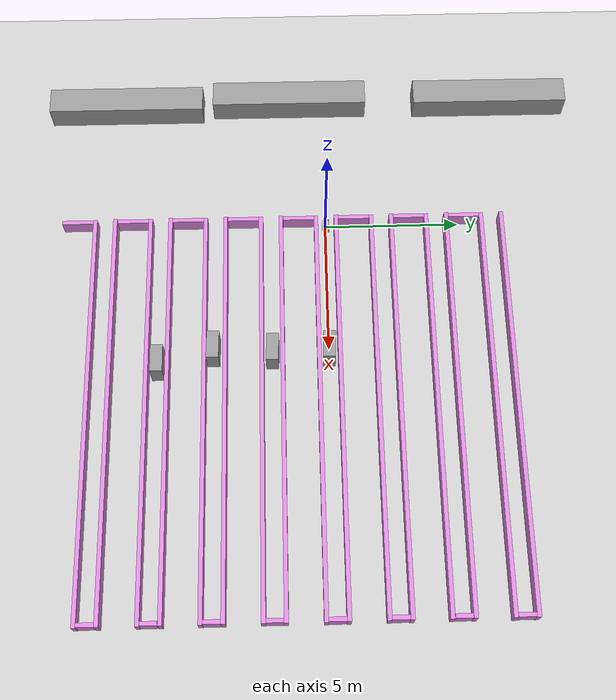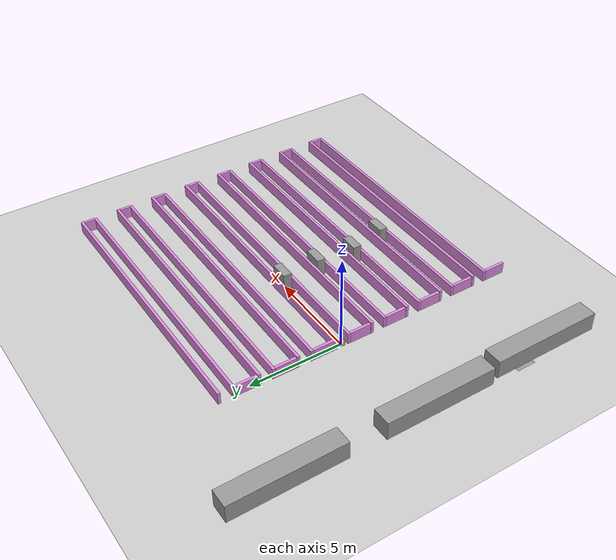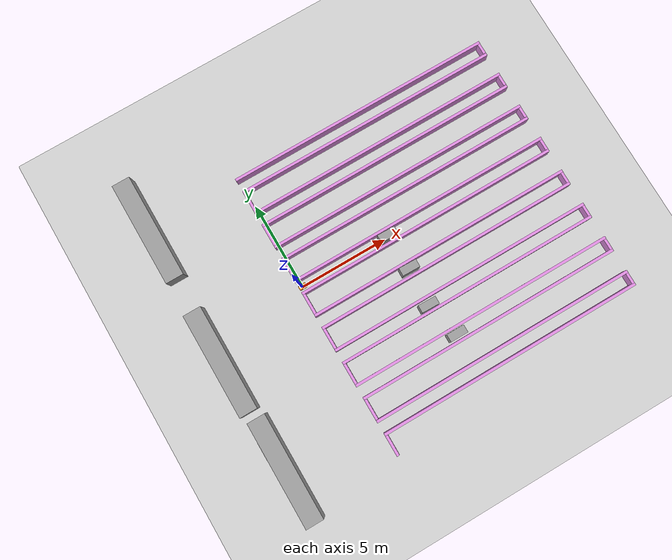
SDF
<sdf version="1.7">
 <world name="default">
  <light name="sun" type="directional">
   <pose>0 0 10 0 -0 0</pose>
   <diffuse>0.8 0.8 0.8 1</diffuse>
   <specular>0.2 0.2 0.2 1</specular>
   <attenuation>
    <range>1000</range>
    <constant>0.9</constant>
    <linear>0.01</linear>
    <quadratic>0.001</quadratic>
   </attenuation>
   <direction>-0.5 0.1 -0.9</direction>
   <spot><inner_angle>0</inner_angle><outer_angle>0</outer_angle><falloff>0</falloff></spot>
  </light>
  <model name="ground_plane">
   <static>1</static>
   <link name="link">
    <collision name="collision">
     <geometry><plane><normal>0 0 1</normal><size>100 100</size></plane></geometry>
     <surface>
      <contact><collide_bitmask>65535</collide_bitmask></contact>
      <friction><ode><mu>100</mu><mu2>50</mu2></ode></friction>
     </surface>
    </collision>
    <visual name="visual">
     <cast_shadows>0</cast_shadows>
     <geometry><plane><normal>0 0 1</normal><size>100 100</size></plane></geometry>
     <material>
      <script><uri>file://media/materials/scripts/gazebo.material</uri><name>Gazebo/Grey</name></script>
     </material>
    </visual>
   </link>
  </model>
  <gravity>0 0 -9.8</gravity>
  <magnetic_field>6e-06 2.3e-05 -4.2e-05</magnetic_field>
  <atmosphere type="adiabatic"/>
  <physics type="ode">
   <max_step_size>0.001</max_step_size>
   <real_time_factor>1</real_time_factor>
   <real_time_update_rate>1000</real_time_update_rate>
  </physics>
  <scene><ambient>0.4 0.4 0.4 1</ambient><background>0.7 0.7 0.7 1</background><shadows>1</shadows></scene>
  <audio><device>default</device></audio>
  <spherical_coordinates>
   <surface_model>EARTH_WGS84</surface_model>
   <latitude_deg>0</latitude_deg>
   <longitude_deg>0</longitude_deg>
   <elevation>0</elevation>
   <heading_deg>0</heading_deg>
  </spherical_coordinates>
  <model name="60cm_koridor">
   <pose>7.323 -0.566065 0 0 -0 0</pose>
   <link name="Wall_0">
    <collision name="Wall_0_Collision">
     <geometry><box><size>0.600141 0.15 0.65</size></box></geometry>
     <pose>0 0 0.325 0 -0 0</pose>
    </collision>
    <visual name="Wall_0_Visual">
     <pose>0 0 0.325 0 -0 0</pose>
     <geometry><box><size>0.600141 0.15 0.65</size></box></geometry>
     <material>
      <script><uri>file://media/materials/scripts/gazebo.material</uri><name>Gazebo/Grey</name></script>
      <ambient>0.862745 0.541176 0.866667 1</ambient>
     </material>
     <meta><layer>0</layer></meta>
    </visual>
    <pose>7.4125 0.576065 0 0 -0 -1.57302</pose>
   </link>
   <link name="Wall_11">
    <collision name="Wall_11_Collision">
     <geometry><box><size>1.15626 0.15 0.6</size></box></geometry>
     <pose>0 0 0.3 0 -0 0</pose>
    </collision>
    <visual name="Wall_11_Visual">
     <pose>0 0 0.3 0 -0 0</pose>
     <geometry><box><size>1.15626 0.15 0.6</size></box></geometry>
     <material>
      <script><uri>file://media/materials/scripts/gazebo.material</uri><name>Gazebo/Grey</name></script>
      <ambient>0.862745 0.541176 0.866667 1</ambient>
     </material>
     <meta><layer>0</layer></meta>
    </visual>
    <pose>-7.422 -0.450935 0 0 -0 -1.5708</pose>
   </link>
   <link name="Wall_2">
    <collision name="Wall_2_Collision">
     <geometry><box><size>15 0.15 0.65</size></box></geometry>
     <pose>0 0 0.325 0 -0 0</pose>
    </collision>
    <visual name="Wall_2_Visual">
     <pose>0 0 0.325 0 -0 0</pose>
     <geometry><box><size>15 0.15 0.65</size></box></geometry>
     <material>
      <script><uri>file://media/materials/scripts/gazebo.material</uri><name>Gazebo/Grey</name></script>
      <ambient>0.862745 0.541176 0.866667 1</ambient>
     </material>
     <meta><layer>0</layer></meta>
    </visual>
    <pose>-0.002 0.954065 0 0 -0 3.14159</pose>
   </link>
   <link name="Wall_4">
    <collision name="Wall_4_Collision">
     <geometry><box><size>15 0.15 0.6</size></box></geometry>
     <pose>0 0 0.3 0 -0 0</pose>
    </collision>
    <visual name="Wall_4_Visual">
     <pose>0 0 0.3 0 -0 0</pose>
     <geometry><box><size>15 0.15 0.6</size></box></geometry>
     <material>
      <script><uri>file://media/materials/scripts/gazebo.material</uri><name>Gazebo/Grey</name></script>
      <ambient>0.862745 0.541176 0.866667 1</ambient>
     </material>
     <meta><layer>0</layer></meta>
    </visual>
    <pose>0.002 0.203065 0 0 -0 0</pose>
   </link>
   <static>1</static>
  </model>
  <model name="60cm_koridor_clone">
   <pose>7.3235 -2.63015 0 0 -0 0</pose>
   <link name="Wall_0">
    <collision name="Wall_0_Collision">
     <geometry><box><size>0.600141 0.15 0.65</size></box></geometry>
     <pose>0 0 0.325 0 -0 0</pose>
    </collision>
    <visual name="Wall_0_Visual">
     <pose>0 0 0.325 0 -0 0</pose>
     <geometry><box><size>0.600141 0.15 0.65</size></box></geometry>
     <material>
      <script><uri>file://media/materials/scripts/gazebo.material</uri><name>Gazebo/Grey</name></script>
      <ambient>0.862745 0.541176 0.866667 1</ambient>
     </material>
     <meta><layer>0</layer></meta>
    </visual>
    <pose>7.4125 0.576065 0 0 -0 -1.57302</pose>
   </link>
   <link name="Wall_11">
    <collision name="Wall_11_Collision">
     <geometry><box><size>1.15626 0.15 0.6</size></box></geometry>
     <pose>0 0 0.3 0 -0 0</pose>
    </collision>
    <visual name="Wall_11_Visual">
     <pose>0 0 0.3 0 -0 0</pose>
     <geometry><box><size>1.15626 0.15 0.6</size></box></geometry>
     <material>
      <script><uri>file://media/materials/scripts/gazebo.material</uri><name>Gazebo/Grey</name></script>
      <ambient>0.862745 0.541176 0.866667 1</ambient>
     </material>
     <meta><layer>0</layer></meta>
    </visual>
    <pose>-7.422 -0.450935 0 0 -0 -1.5708</pose>
   </link>
   <link name="Wall_2">
    <collision name="Wall_2_Collision">
     <geometry><box><size>15 0.15 0.65</size></box></geometry>
     <pose>0 0 0.325 0 -0 0</pose>
    </collision>
    <visual name="Wall_2_Visual">
     <pose>0 0 0.325 0 -0 0</pose>
     <geometry><box><size>15 0.15 0.65</size></box></geometry>
     <material>
      <script><uri>file://media/materials/scripts/gazebo.material</uri><name>Gazebo/Grey</name></script>
      <ambient>0.862745 0.541176 0.866667 1</ambient>
     </material>
     <meta><layer>0</layer></meta>
    </visual>
    <pose>-0.002 0.954065 0 0 -0 3.14159</pose>
   </link>
   <link name="Wall_4">
    <collision name="Wall_4_Collision">
     <geometry><box><size>15 0.15 0.6</size></box></geometry>
     <pose>0 0 0.3 0 -0 0</pose>
    </collision>
    <visual name="Wall_4_Visual">
     <pose>0 0 0.3 0 -0 0</pose>
     <geometry><box><size>15 0.15 0.6</size></box></geometry>
     <material>
      <script><uri>file://media/materials/scripts/gazebo.material</uri><name>Gazebo/Grey</name></script>
      <ambient>0.862745 0.541176 0.866667 1</ambient>
     </material>
     <meta><layer>0</layer></meta>
    </visual>
    <pose>0.002 0.203065 0 0 -0 0</pose>
   </link>
   <static>1</static>
  </model>
  <model name="60cm_koridor_clone_clone">
   <pose>7.3271 -4.69709 0 0 -0 0</pose>
   <link name="Wall_0">
    <collision name="Wall_0_Collision">
     <geometry><box><size>0.600141 0.15 0.65</size></box></geometry>
     <pose>0 0 0.325 0 -0 0</pose>
    </collision>
    <visual name="Wall_0_Visual">
     <pose>0 0 0.325 0 -0 0</pose>
     <geometry><box><size>0.600141 0.15 0.65</size></box></geometry>
     <material>
      <script><uri>file://media/materials/scripts/gazebo.material</uri><name>Gazebo/Grey</name></script>
      <ambient>0.862745 0.541176 0.866667 1</ambient>
     </material>
     <meta><layer>0</layer></meta>
    </visual>
    <pose>7.4125 0.576065 0 0 -0 -1.57302</pose>
   </link>
   <link name="Wall_11">
    <collision name="Wall_11_Collision">
     <geometry><box><size>1.15626 0.15 0.6</size></box></geometry>
     <pose>0 0 0.3 0 -0 0</pose>
    </collision>
    <visual name="Wall_11_Visual">
     <pose>0 0 0.3 0 -0 0</pose>
     <geometry><box><size>1.15626 0.15 0.6</size></box></geometry>
     <material>
      <script><uri>file://media/materials/scripts/gazebo.material</uri><name>Gazebo/Grey</name></script>
      <ambient>0.862745 0.541176 0.866667 1</ambient>
     </material>
     <meta><layer>0</layer></meta>
    </visual>
    <pose>-7.422 -0.450935 0 0 -0 -1.5708</pose>
   </link>
   <link name="Wall_2">
    <collision name="Wall_2_Collision">
     <geometry><box><size>15 0.15 0.65</size></box></geometry>
     <pose>0 0 0.325 0 -0 0</pose>
    </collision>
    <visual name="Wall_2_Visual">
     <pose>0 0 0.325 0 -0 0</pose>
     <geometry><box><size>15 0.15 0.65</size></box></geometry>
     <material>
      <script><uri>file://media/materials/scripts/gazebo.material</uri><name>Gazebo/Grey</name></script>
      <ambient>0.862745 0.541176 0.866667 1</ambient>
     </material>
     <meta><layer>0</layer></meta>
    </visual>
    <pose>-0.002 0.954065 0 0 -0 3.14159</pose>
   </link>
   <link name="Wall_4">
    <collision name="Wall_4_Collision">
     <geometry><box><size>15 0.15 0.6</size></box></geometry>
     <pose>0 0 0.3 0 -0 0</pose>
    </collision>
    <visual name="Wall_4_Visual">
     <pose>0 0 0.3 0 -0 0</pose>
     <geometry><box><size>15 0.15 0.6</size></box></geometry>
     <material>
      <script><uri>file://media/materials/scripts/gazebo.material</uri><name>Gazebo/Grey</name></script>
      <ambient>0.862745 0.541176 0.866667 1</ambient>
     </material>
     <meta><layer>0</layer></meta>
    </visual>
    <pose>0.002 0.203065 0 0 -0 0</pose>
   </link>
   <static>1</static>
  </model>
  <model name="60cm_koridor_clone_clone_clone">
   <pose>7.3363 -6.75838 0 0 -0 0</pose>
   <link name="Wall_0">
    <collision name="Wall_0_Collision">
     <geometry><box><size>0.600141 0.15 0.65</size></box></geometry>
     <pose>0 0 0.325 0 -0 0</pose>
    </collision>
    <visual name="Wall_0_Visual">
     <pose>0 0 0.325 0 -0 0</pose>
     <geometry><box><size>0.600141 0.15 0.65</size></box></geometry>
     <material>
      <script><uri>file://media/materials/scripts/gazebo.material</uri><name>Gazebo/Grey</name></script>
      <ambient>0.862745 0.541176 0.866667 1</ambient>
     </material>
     <meta><layer>0</layer></meta>
    </visual>
    <pose>7.4125 0.576065 0 0 -0 -1.57302</pose>
   </link>
   <link name="Wall_11">
    <collision name="Wall_11_Collision">
     <geometry><box><size>1.15626 0.15 0.6</size></box></geometry>
     <pose>0 0 0.3 0 -0 0</pose>
    </collision>
    <visual name="Wall_11_Visual">
     <pose>0 0 0.3 0 -0 0</pose>
     <geometry><box><size>1.15626 0.15 0.6</size></box></geometry>
     <material>
      <script><uri>file://media/materials/scripts/gazebo.material</uri><name>Gazebo/Grey</name></script>
      <ambient>0.862745 0.541176 0.866667 1</ambient>
     </material>
     <meta><layer>0</layer></meta>
    </visual>
    <pose>-7.422 -0.450935 0 0 -0 -1.5708</pose>
   </link>
   <link name="Wall_2">
    <collision name="Wall_2_Collision">
     <geometry><box><size>15 0.15 0.65</size></box></geometry>
     <pose>0 0 0.325 0 -0 0</pose>
    </collision>
    <visual name="Wall_2_Visual">
     <pose>0 0 0.325 0 -0 0</pose>
     <geometry><box><size>15 0.15 0.65</size></box></geometry>
     <material>
      <script><uri>file://media/materials/scripts/gazebo.material</uri><name>Gazebo/Grey</name></script>
      <ambient>0.862745 0.541176 0.866667 1</ambient>
     </material>
     <meta><layer>0</layer></meta>
    </visual>
    <pose>-0.002 0.954065 0 0 -0 3.14159</pose>
   </link>
   <link name="Wall_4">
    <collision name="Wall_4_Collision">
     <geometry><box><size>15 0.15 0.6</size></box></geometry>
     <pose>0 0 0.3 0 -0 0</pose>
    </collision>
    <visual name="Wall_4_Visual">
     <pose>0 0 0.3 0 -0 0</pose>
     <geometry><box><size>15 0.15 0.6</size></box></geometry>
     <material>
      <script><uri>file://media/materials/scripts/gazebo.material</uri><name>Gazebo/Grey</name></script>
      <ambient>0.862745 0.541176 0.866667 1</ambient>
     </material>
     <meta><layer>0</layer></meta>
    </visual>
    <pose>0.002 0.203065 0 0 -0 0</pose>
   </link>
   <static>1</static>
  </model>
  <model name="60cm_koridor_clone_clone_clone_clone">
   <pose>7.3429 -8.82832 0 0 -0 0</pose>
   <link name="Wall_0">
    <collision name="Wall_0_Collision">
     <geometry><box><size>0.600141 0.15 0.65</size></box></geometry>
     <pose>0 0 0.325 0 -0 0</pose>
    </collision>
    <visual name="Wall_0_Visual">
     <pose>0 0 0.325 0 -0 0</pose>
     <geometry><box><size>0.600141 0.15 0.65</size></box></geometry>
     <material>
      <script><uri>file://media/materials/scripts/gazebo.material</uri><name>Gazebo/Grey</name></script>
      <ambient>0.862745 0.541176 0.866667 1</ambient>
     </material>
     <meta><layer>0</layer></meta>
    </visual>
    <pose>7.4125 0.576065 0 0 -0 -1.57302</pose>
   </link>
   <link name="Wall_11">
    <collision name="Wall_11_Collision">
     <geometry><box><size>1.15626 0.15 0.6</size></box></geometry>
     <pose>0 0 0.3 0 -0 0</pose>
    </collision>
    <visual name="Wall_11_Visual">
     <pose>0 0 0.3 0 -0 0</pose>
     <geometry><box><size>1.15626 0.15 0.6</size></box></geometry>
     <material>
      <script><uri>file://media/materials/scripts/gazebo.material</uri><name>Gazebo/Grey</name></script>
      <ambient>0.862745 0.541176 0.866667 1</ambient>
     </material>
     <meta><layer>0</layer></meta>
    </visual>
    <pose>-7.422 -0.450935 0 0 -0 -1.5708</pose>
   </link>
   <link name="Wall_2">
    <collision name="Wall_2_Collision">
     <geometry><box><size>15 0.15 0.65</size></box></geometry>
     <pose>0 0 0.325 0 -0 0</pose>
    </collision>
    <visual name="Wall_2_Visual">
     <pose>0 0 0.325 0 -0 0</pose>
     <geometry><box><size>15 0.15 0.65</size></box></geometry>
     <material>
      <script><uri>file://media/materials/scripts/gazebo.material</uri><name>Gazebo/Grey</name></script>
      <ambient>0.862745 0.541176 0.866667 1</ambient>
     </material>
     <meta><layer>0</layer></meta>
    </visual>
    <pose>-0.002 0.954065 0 0 -0 3.14159</pose>
   </link>
   <link name="Wall_4">
    <collision name="Wall_4_Collision">
     <geometry><box><size>15 0.15 0.6</size></box></geometry>
     <pose>0 0 0.3 0 -0 0</pose>
    </collision>
    <visual name="Wall_4_Visual">
     <pose>0 0 0.3 0 -0 0</pose>
     <geometry><box><size>15 0.15 0.6</size></box></geometry>
     <material>
      <script><uri>file://media/materials/scripts/gazebo.material</uri><name>Gazebo/Grey</name></script>
      <ambient>0.862745 0.541176 0.866667 1</ambient>
     </material>
     <meta><layer>0</layer></meta>
    </visual>
    <pose>0.002 0.203065 0 0 -0 0</pose>
   </link>
   <static>1</static>
  </model>
  <model name="60cm_koridor_clone_0">
   <pose>7.3114 1.50377 0 0 -0 0</pose>
   <link name="Wall_0">
    <collision name="Wall_0_Collision">
     <geometry><box><size>0.600141 0.15 0.65</size></box></geometry>
     <pose>0 0 0.325 0 -0 0</pose>
    </collision>
    <visual name="Wall_0_Visual">
     <pose>0 0 0.325 0 -0 0</pose>
     <geometry><box><size>0.600141 0.15 0.65</size></box></geometry>
     <material>
      <script><uri>file://media/materials/scripts/gazebo.material</uri><name>Gazebo/Grey</name></script>
      <ambient>0.862745 0.541176 0.866667 1</ambient>
     </material>
     <meta><layer>0</layer></meta>
    </visual>
    <pose>7.4125 0.576065 0 0 -0 -1.57302</pose>
   </link>
   <link name="Wall_11">
    <collision name="Wall_11_Collision">
     <geometry><box><size>1.15626 0.15 0.6</size></box></geometry>
     <pose>0 0 0.3 0 -0 0</pose>
    </collision>
    <visual name="Wall_11_Visual">
     <pose>0 0 0.3 0 -0 0</pose>
     <geometry><box><size>1.15626 0.15 0.6</size></box></geometry>
     <material>
      <script><uri>file://media/materials/scripts/gazebo.material</uri><name>Gazebo/Grey</name></script>
      <ambient>0.862745 0.541176 0.866667 1</ambient>
     </material>
     <meta><layer>0</layer></meta>
    </visual>
    <pose>-7.422 -0.450935 0 0 -0 -1.5708</pose>
   </link>
   <link name="Wall_2">
    <collision name="Wall_2_Collision">
     <geometry><box><size>15 0.15 0.65</size></box></geometry>
     <pose>0 0 0.325 0 -0 0</pose>
    </collision>
    <visual name="Wall_2_Visual">
     <pose>0 0 0.325 0 -0 0</pose>
     <geometry><box><size>15 0.15 0.65</size></box></geometry>
     <material>
      <script><uri>file://media/materials/scripts/gazebo.material</uri><name>Gazebo/Grey</name></script>
      <ambient>0.862745 0.541176 0.866667 1</ambient>
     </material>
     <meta><layer>0</layer></meta>
    </visual>
    <pose>-0.002 0.954065 0 0 -0 3.14159</pose>
   </link>
   <link name="Wall_4">
    <collision name="Wall_4_Collision">
     <geometry><box><size>15 0.15 0.6</size></box></geometry>
     <pose>0 0 0.3 0 -0 0</pose>
    </collision>
    <visual name="Wall_4_Visual">
     <pose>0 0 0.3 0 -0 0</pose>
     <geometry><box><size>15 0.15 0.6</size></box></geometry>
     <material>
      <script><uri>file://media/materials/scripts/gazebo.material</uri><name>Gazebo/Grey</name></script>
      <ambient>0.862745 0.541176 0.866667 1</ambient>
     </material>
     <meta><layer>0</layer></meta>
    </visual>
    <pose>0.002 0.203065 0 0 -0 0</pose>
   </link>
   <static>1</static>
  </model>
  <model name="60cm_koridor_clone_0_clone">
   <pose>7.3029 3.56758 0 0 -0 0</pose>
   <link name="Wall_0">
    <collision name="Wall_0_Collision">
     <geometry><box><size>0.600141 0.15 0.65</size></box></geometry>
     <pose>0 0 0.325 0 -0 0</pose>
    </collision>
    <visual name="Wall_0_Visual">
     <pose>0 0 0.325 0 -0 0</pose>
     <geometry><box><size>0.600141 0.15 0.65</size></box></geometry>
     <material>
      <script><uri>file://media/materials/scripts/gazebo.material</uri><name>Gazebo/Grey</name></script>
      <ambient>0.862745 0.541176 0.866667 1</ambient>
     </material>
     <meta><layer>0</layer></meta>
    </visual>
    <pose>7.4125 0.576065 0 0 -0 -1.57302</pose>
   </link>
   <link name="Wall_11">
    <collision name="Wall_11_Collision">
     <geometry><box><size>1.15626 0.15 0.6</size></box></geometry>
     <pose>0 0 0.3 0 -0 0</pose>
    </collision>
    <visual name="Wall_11_Visual">
     <pose>0 0 0.3 0 -0 0</pose>
     <geometry><box><size>1.15626 0.15 0.6</size></box></geometry>
     <material>
      <script><uri>file://media/materials/scripts/gazebo.material</uri><name>Gazebo/Grey</name></script>
      <ambient>0.862745 0.541176 0.866667 1</ambient>
     </material>
     <meta><layer>0</layer></meta>
    </visual>
    <pose>-7.422 -0.450935 0 0 -0 -1.5708</pose>
   </link>
   <link name="Wall_2">
    <collision name="Wall_2_Collision">
     <geometry><box><size>15 0.15 0.65</size></box></geometry>
     <pose>0 0 0.325 0 -0 0</pose>
    </collision>
    <visual name="Wall_2_Visual">
     <pose>0 0 0.325 0 -0 0</pose>
     <geometry><box><size>15 0.15 0.65</size></box></geometry>
     <material>
      <script><uri>file://media/materials/scripts/gazebo.material</uri><name>Gazebo/Grey</name></script>
      <ambient>0.862745 0.541176 0.866667 1</ambient>
     </material>
     <meta><layer>0</layer></meta>
    </visual>
    <pose>-0.002 0.954065 0 0 -0 3.14159</pose>
   </link>
   <link name="Wall_4">
    <collision name="Wall_4_Collision">
     <geometry><box><size>15 0.15 0.6</size></box></geometry>
     <pose>0 0 0.3 0 -0 0</pose>
    </collision>
    <visual name="Wall_4_Visual">
     <pose>0 0 0.3 0 -0 0</pose>
     <geometry><box><size>15 0.15 0.6</size></box></geometry>
     <material>
      <script><uri>file://media/materials/scripts/gazebo.material</uri><name>Gazebo/Grey</name></script>
      <ambient>0.862745 0.541176 0.866667 1</ambient>
     </material>
     <meta><layer>0</layer></meta>
    </visual>
    <pose>0.002 0.203065 0 0 -0 0</pose>
   </link>
   <static>1</static>
  </model>
  <model name="60cm_koridor_clone_0_clone_clone">
   <pose>7.3055 5.6327 0 0 -0 0</pose>
   <link name="Wall_0">
    <collision name="Wall_0_Collision">
     <geometry><box><size>0.600141 0.15 0.65</size></box></geometry>
     <pose>0 0 0.325 0 -0 0</pose>
    </collision>
    <visual name="Wall_0_Visual">
     <pose>0 0 0.325 0 -0 0</pose>
     <geometry><box><size>0.600141 0.15 0.65</size></box></geometry>
     <material>
      <script><uri>file://media/materials/scripts/gazebo.material</uri><name>Gazebo/Grey</name></script>
      <ambient>0.862745 0.541176 0.866667 1</ambient>
     </material>
     <meta><layer>0</layer></meta>
    </visual>
    <pose>7.4125 0.576065 0 0 -0 -1.57302</pose>
   </link>
   <link name="Wall_11">
    <collision name="Wall_11_Collision">
     <geometry><box><size>1.15626 0.15 0.6</size></box></geometry>
     <pose>0 0 0.3 0 -0 0</pose>
    </collision>
    <visual name="Wall_11_Visual">
     <pose>0 0 0.3 0 -0 0</pose>
     <geometry><box><size>1.15626 0.15 0.6</size></box></geometry>
     <material>
      <script><uri>file://media/materials/scripts/gazebo.material</uri><name>Gazebo/Grey</name></script>
      <ambient>0.862745 0.541176 0.866667 1</ambient>
     </material>
     <meta><layer>0</layer></meta>
    </visual>
    <pose>-7.422 -0.450935 0 0 -0 -1.5708</pose>
   </link>
   <link name="Wall_2">
    <collision name="Wall_2_Collision">
     <geometry><box><size>15 0.15 0.65</size></box></geometry>
     <pose>0 0 0.325 0 -0 0</pose>
    </collision>
    <visual name="Wall_2_Visual">
     <pose>0 0 0.325 0 -0 0</pose>
     <geometry><box><size>15 0.15 0.65</size></box></geometry>
     <material>
      <script><uri>file://media/materials/scripts/gazebo.material</uri><name>Gazebo/Grey</name></script>
      <ambient>0.862745 0.541176 0.866667 1</ambient>
     </material>
     <meta><layer>0</layer></meta>
    </visual>
    <pose>-0.002 0.954065 0 0 -0 3.14159</pose>
   </link>
   <link name="Wall_4">
    <collision name="Wall_4_Collision">
     <geometry><box><size>15 0.15 0.6</size></box></geometry>
     <pose>0 0 0.3 0 -0 0</pose>
    </collision>
    <visual name="Wall_4_Visual">
     <pose>0 0 0.3 0 -0 0</pose>
     <geometry><box><size>15 0.15 0.6</size></box></geometry>
     <material>
      <script><uri>file://media/materials/scripts/gazebo.material</uri><name>Gazebo/Grey</name></script>
      <ambient>0.862745 0.541176 0.866667 1</ambient>
     </material>
     <meta><layer>0</layer></meta>
    </visual>
    <pose>0.002 0.203065 0 0 -0 0</pose>
   </link>
   <static>1</static>
  </model>
  <model name="my_bot">
   <link name="base_link">
    <inertial>
     <pose>-0.000444 0 0.018278 0 -0 0</pose>
     <mass>0.9</mass>
     <inertia>
      <ixx>0.00939812</ixx>
      <ixy>1.76036e-19</ixy>
      <ixz>-2.61111e-05</ixz>
      <iyy>0.0217761</iyy>
      <iyz>2.99887e-20</iyz>
      <izz>0.0201891</izz>
     </inertia>
    </inertial>
    <collision name="base_link_fixed_joint_lump__chassis_collision">
     <pose>0 0 0.0705 0 -0 0</pose>
     <geometry><box><size>0.4068 0.25 0.24</size></box></geometry>
    </collision>
    <collision name="base_link_fixed_joint_lump__caster_wheel1_collision_1">
     <pose>-0.154 0.0565 -0.047 0 -0 0</pose>
     <geometry><sphere><radius>0.0175</radius></sphere></geometry>
    </collision>
    <collision name="base_link_fixed_joint_lump__caster_wheel2_collision_2">
     <pose>-0.154 -0.0565 -0.047 0 -0 0</pose>
     <geometry><sphere><radius>0.0175</radius></sphere></geometry>
    </collision>
    <collision name="base_link_fixed_joint_lump__caster_wheel3_collision_3">
     <pose>0.152 0.0565 -0.047 0 -0 0</pose>
     <geometry><sphere><radius>0.0175</radius></sphere></geometry>
    </collision>
    <collision name="base_link_fixed_joint_lump__caster_wheel4_collision_4">
     <pose>0.152 -0.0565 -0.047 0 -0 0</pose>
     <geometry><sphere><radius>0.0175</radius></sphere></geometry>
    </collision>
    <visual name="base_link_fixed_joint_lump__chassis_visual">
     <pose>0 0 0.0705 0 -0 0</pose>
     <geometry><box><size>0.4068 0.25 0.24</size></box></geometry>
     <material>
      <script><name>Gazebo/Orange</name><uri>file://media/materials/scripts/gazebo.material</uri></script>
     </material>
    </visual>
    <visual name="base_link_fixed_joint_lump__camera_link_visual_1">
     <pose>0.0726 0 0.1315 0 0.18 0</pose>
     <geometry><box><size>0.01 0.03 0.03</size></box></geometry>
     <material>
      <script><name>Gazebo/Black</name><uri>file://media/materials/scripts/gazebo.material</uri></script>
     </material>
    </visual>
    <visual name="base_link_fixed_joint_lump__camera_link_visual_2">
     <pose>0.063649 0 0.082308 0 0.18 0</pose>
     <geometry><cylinder><length>0.1</length><radius>0.002</radius></cylinder></geometry>
     <material>
      <script><name>Gazebo/Black</name><uri>file://media/materials/scripts/gazebo.material</uri></script>
     </material>
    </visual>
    <visual name="base_link_fixed_joint_lump__caster_wheel1_visual_3">
     <pose>-0.154 0.0565 -0.047 0 -0 0</pose>
     <geometry><sphere><radius>0.0175</radius></sphere></geometry>
    </visual>
    <visual name="base_link_fixed_joint_lump__caster_wheel2_visual_4">
     <pose>-0.154 -0.0565 -0.047 0 -0 0</pose>
     <geometry><sphere><radius>0.0175</radius></sphere></geometry>
    </visual>
    <visual name="base_link_fixed_joint_lump__caster_wheel3_visual_5">
     <pose>0.152 0.0565 -0.047 0 -0 0</pose>
     <geometry><sphere><radius>0.0175</radius></sphere></geometry>
    </visual>
    <visual name="base_link_fixed_joint_lump__caster_wheel4_visual_6">
     <pose>0.152 -0.0565 -0.047 0 -0 0</pose>
     <geometry><sphere><radius>0.0175</radius></sphere></geometry>
    </visual>
    <visual name="base_link_fixed_joint_lump__face_link_visual_7">
     <pose>0.2124 0 0.1055 0 -0 0</pose>
     <geometry><box><size>0.0255 0.09 0.025</size></box></geometry>
    </visual>
    <visual name="base_link_fixed_joint_lump__ydlidar1_visual_8">
     <pose>-0.1797 0.09876 0.2085 0 -0 0</pose>
     <geometry><cylinder><length>0.034</length><radius>0.018</radius></cylinder></geometry>
     <material>
      <script><name>Gazebo/Black</name><uri>file://media/materials/scripts/gazebo.material</uri></script>
     </material>
    </visual>
    <visual name="base_link_fixed_joint_lump__ydlidar2_visual_9">
     <pose>0.1797 -0.09876 0.2985 0 -0 0</pose>
     <geometry><cylinder><length>0.034</length><radius>0.018</radius></cylinder></geometry>
     <material>
      <script><name>Gazebo/Black</name><uri>file://media/materials/scripts/gazebo.material</uri></script>
     </material>
    </visual>
    <sensor name="camera" type="camera">
     <visualize>1</visualize>
     <update_rate>10</update_rate>
     <camera>
      <horizontal_fov>1.089</horizontal_fov>
      <image><format>R8G8B8</format><width>640</width><height>480</height></image>
      <clip><near>0.05</near><far>8</far></clip>
     </camera>
     <plugin name="camera_controller" filename="libgazebo_ros_camera.so">
      <frame_name>camera_link_optical</frame_name>
     </plugin>
     <pose>0.0726 0 0.1315 0 0.18 0</pose>
    </sensor>
    <sensor name="ydlidar1" type="ray">
     <visualize>0</visualize>
     <update_rate>10</update_rate>
     <ray>
      <scan>
       <horizontal>
        <samples>360</samples>
        <min_angle>-3.14</min_angle>
        <max_angle>3.14</max_angle>
        <resolution>1</resolution>
       </horizontal>
       <vertical><samples>1</samples><min_angle>0</min_angle><max_angle>0</max_angle></vertical>
      </scan>
      <range><min>0.03</min><max>30</max></range>
     </ray>
     <plugin name="laser_controller1" filename="libgazebo_ros_ray_sensor.so">
      <ros><argument>~/out:=scan1</argument></ros>
      <output_type>sensor_msgs/LaserScan</output_type>
      <frame_name>ydlidar1</frame_name>
     </plugin>
     <pose>-0.1797 0.09876 0.2185 0 -0 0</pose>
    </sensor>
    <sensor name="ydlidar2" type="ray">
     <visualize>0</visualize>
     <update_rate>10</update_rate>
     <ray>
      <scan>
       <horizontal>
        <samples>360</samples>
        <min_angle>-3.14</min_angle>
        <max_angle>3.14</max_angle>
        <resolution>1</resolution>
       </horizontal>
       <vertical><samples>1</samples><min_angle>0</min_angle><max_angle>0</max_angle></vertical>
      </scan>
      <range><min>0.03</min><max>30</max></range>
     </ray>
     <plugin name="laser_controller2" filename="libgazebo_ros_ray_sensor.so">
      <ros><argument>~/out:=scan2</argument></ros>
      <output_type>sensor_msgs/LaserScan</output_type>
      <frame_name>ydlidar2</frame_name>
     </plugin>
     <pose>0.1797 -0.09876 0.3085 0 -0 0</pose>
    </sensor>
   </link>
   <joint name="left_wheel_joint" type="revolute">
    <pose relative_to="base_link">0 0.1125 0 -1.5708 0 0</pose>
    <parent>base_link</parent>
    <child>left_wheel</child>
    <axis>
     <xyz>0 0 1</xyz>
     <limit><lower>-1e+16</lower><upper>1e+16</upper></limit>
     <dynamics><spring_reference>0</spring_reference><spring_stiffness>0</spring_stiffness></dynamics>
    </axis>
   </joint>
   <link name="left_wheel">
    <pose relative_to="left_wheel_joint">0 0 0 0 -0 0</pose>
    <inertial>
     <mass>1</mass>
     <inertia>
      <ixx>0.00112233</ixx>
      <ixy>0</ixy>
      <ixz>0</ixz>
      <iyy>0.00112233</iyy>
      <iyz>0</iyz>
      <izz>0.002178</izz>
     </inertia>
    </inertial>
    <collision name="left_wheel_collision">
     <geometry><sphere><radius>0.066</radius></sphere></geometry>
    </collision>
    <visual name="left_wheel_visual">
     <geometry><cylinder><length>0.02</length><radius>0.066</radius></cylinder></geometry>
     <material>
      <script><name>Gazebo/Blue</name><uri>file://media/materials/scripts/gazebo.material</uri></script>
     </material>
    </visual>
   </link>
   <joint name="right_wheel_joint" type="revolute">
    <pose relative_to="base_link">0 -0.1125 0 1.5708 -0 0</pose>
    <parent>base_link</parent>
    <child>right_wheel</child>
    <axis>
     <xyz>0 0 -1</xyz>
     <limit><lower>-1e+16</lower><upper>1e+16</upper></limit>
     <dynamics><spring_reference>0</spring_reference><spring_stiffness>0</spring_stiffness></dynamics>
    </axis>
   </joint>
   <link name="right_wheel">
    <pose relative_to="right_wheel_joint">0 0 0 0 -0 0</pose>
    <inertial>
     <mass>1</mass>
     <inertia>
      <ixx>0.00112233</ixx>
      <ixy>0</ixy>
      <ixz>0</ixz>
      <iyy>0.00112233</iyy>
      <iyz>0</iyz>
      <izz>0.002178</izz>
     </inertia>
    </inertial>
    <collision name="right_wheel_collision">
     <geometry><sphere><radius>0.066</radius></sphere></geometry>
    </collision>
    <visual name="right_wheel_visual">
     <geometry><cylinder><length>0.02</length><radius>0.066</radius></cylinder></geometry>
     <material>
      <script><name>Gazebo/Blue</name><uri>file://media/materials/scripts/gazebo.material</uri></script>
     </material>
    </visual>
   </link>
   <static>0</static>
   <plugin name="gazebo_ros2_control" filename="libgazebo_ros2_control.so">
    <parameters>/home/mert/narrow_ws/install/articubot_one/share/articubot_one/config/my_controllers.yaml</parameters>
    <parameters>/home/mert/narrow_ws/install/articubot_one/share/articubot_one/config/gaz_ros2_ctl_use_sim.yaml</parameters>
   </plugin>
   <pose>0.028335 0.00782 0.065998 -1.8e-05 -0.009747 0.01103</pose>
  </model>
  <model name="unit_box_clone">
   <pose>5.23028 -2.03412 0.5 0 0 -0.021713</pose>
   <link name="link">
    <inertial>
     <mass>1</mass>
     <inertia>
      <ixx>0.166667</ixx>
      <ixy>0</ixy>
      <ixz>0</ixz>
      <iyy>0.166667</iyy>
      <iyz>0</iyz>
      <izz>0.166667</izz>
     </inertia>
    </inertial>
    <collision name="collision"><geometry><box><size>1 0.444452 1</size></box></geometry></collision>
    <visual name="visual">
     <geometry><box><size>1 0.444452 1</size></box></geometry>
     <material>
      <script><name>Gazebo/Grey</name><uri>file://media/materials/scripts/gazebo.material</uri></script>
     </material>
    </visual>
   </link>
  </model>
  <model name="unit_box_clone_1">
   <pose>5.58727 -6.14529 0.499999 -0 2e-06 -1e-06</pose>
   <link name="link">
    <inertial>
     <mass>1</mass>
     <inertia>
      <ixx>0.166667</ixx>
      <ixy>0</ixy>
      <ixz>0</ixz>
      <iyy>0.166667</iyy>
      <iyz>0</iyz>
      <izz>0.166667</izz>
     </inertia>
    </inertial>
    <collision name="collision"><geometry><box><size>1 0.444452 1</size></box></geometry></collision>
    <visual name="visual">
     <geometry><box><size>1 0.444452 1</size></box></geometry>
     <material>
      <script><name>Gazebo/Grey</name><uri>file://media/materials/scripts/gazebo.material</uri></script>
     </material>
    </visual>
   </link>
  </model>
  <model name="unit_box_clone_2">
   <pose>-5.43626 -6.27137 3.1e-05 -1.57072 1.4e-05 0.000611</pose>
   <link name="link">
    <inertial>
     <mass>1</mass>
     <inertia>
      <ixx>0.166667</ixx>
      <ixy>0</ixy>
      <ixz>0</ixz>
      <iyy>0.166667</iyy>
      <iyz>0</iyz>
      <izz>0.166667</izz>
     </inertia>
    </inertial>
    <collision name="collision"><geometry><box><size>1 0.00018611 1</size></box></geometry></collision>
    <visual name="visual">
     <geometry><box><size>1 0.00018611 1</size></box></geometry>
     <material>
      <script><name>Gazebo/Grey</name><uri>file://media/materials/scripts/gazebo.material</uri></script>
     </material>
    </visual>
   </link>
  </model>
  <model name="unit_box_clone_2_clone">
   <pose>-5.4256 -1.29564 0.495498 -0.001525 -0 9e-05</pose>
   <link name="link">
    <inertial>
     <mass>1</mass>
     <inertia>
      <ixx>0.166667</ixx>
      <ixy>0</ixy>
      <ixz>0</ixz>
      <iyy>0.166667</iyy>
      <iyz>0</iyz>
      <izz>0.166667</izz>
     </inertia>
    </inertial>
    <collision name="collision"><geometry><box><size>1 5.90835 1</size></box></geometry></collision>
    <visual name="visual">
     <geometry><box><size>1 5.90835 1</size></box></geometry>
     <material>
      <script><name>Gazebo/Grey</name><uri>file://media/materials/scripts/gazebo.material</uri></script>
     </material>
    </visual>
   </link>
  </model>
  <model name="unit_box_clone_2_clone_0">
   <pose>-5.37094 6.49879 0.495498 -0.001525 -0 9e-05</pose>
   <link name="link">
    <inertial>
     <mass>1</mass>
     <inertia>
      <ixx>0.166667</ixx>
      <ixy>0</ixy>
      <ixz>0</ixz>
      <iyy>0.166667</iyy>
      <iyz>0</iyz>
      <izz>0.166667</izz>
     </inertia>
    </inertial>
    <collision name="collision"><geometry><box><size>1 5.90835 1</size></box></geometry></collision>
    <visual name="visual">
     <geometry><box><size>1 5.90835 1</size></box></geometry>
     <material>
      <script><name>Gazebo/Grey</name><uri>file://media/materials/scripts/gazebo.material</uri></script>
     </material>
    </visual>
   </link>
  </model>
  <model name="unit_box_clone_clone">
   <pose>5.10293 -4.15862 0.499996 0 -7e-06 -0.021707</pose>
   <link name="link">
    <inertial>
     <mass>1</mass>
     <inertia>
      <ixx>0.166667</ixx>
      <ixy>0</ixy>
      <ixz>0</ixz>
      <iyy>0.166667</iyy>
      <iyz>0</iyz>
      <izz>0.166667</izz>
     </inertia>
    </inertial>
    <collision name="collision"><geometry><box><size>1 0.444452 1</size></box></geometry></collision>
    <visual name="visual">
     <geometry><box><size>1 0.444452 1</size></box></geometry>
     <material>
      <script><name>Gazebo/Grey</name><uri>file://media/materials/scripts/gazebo.material</uri></script>
     </material>
    </visual>
   </link>
  </model>
  <model name="unit_box_clone_clone_0">
   <pose>5.16047 0.000308 0.5 -0 -0 -0.021708</pose>
   <link name="link">
    <inertial>
     <mass>1</mass>
     <inertia>
      <ixx>0.166667</ixx>
      <ixy>0</ixy>
      <ixz>0</ixz>
      <iyy>0.166667</iyy>
      <iyz>0</iyz>
      <izz>0.166667</izz>
     </inertia>
    </inertial>
    <collision name="collision"><geometry><box><size>1 0.444452 1</size></box></geometry></collision>
    <visual name="visual">
     <geometry><box><size>1 0.444452 1</size></box></geometry>
     <material>
      <script><name>Gazebo/Grey</name><uri>file://media/materials/scripts/gazebo.material</uri></script>
     </material>
    </visual>
   </link>
  </model>
  <model name="unit_box_clone_2_clone_clone">
   <pose>-5.24511 -7.60709 0.499983 -6e-06 1e-06 4.9e-05</pose>
   <link name="link">
    <inertial>
     <mass>1</mass>
     <inertia>
      <ixx>0.166667</ixx>
      <ixy>0</ixy>
      <ixz>0</ixz>
      <iyy>0.166667</iyy>
      <iyz>0</iyz>
      <izz>0.166667</izz>
     </inertia>
    </inertial>
    <collision name="collision"><geometry><box><size>1 5.90835 1</size></box></geometry></collision>
    <visual name="visual">
     <geometry><box><size>1 5.90835 1</size></box></geometry>
     <material>
      <script><name>Gazebo/Grey</name><uri>file://media/materials/scripts/gazebo.material</uri></script>
     </material>
    </visual>
   </link>
  </model>
 </world>
</sdf>
